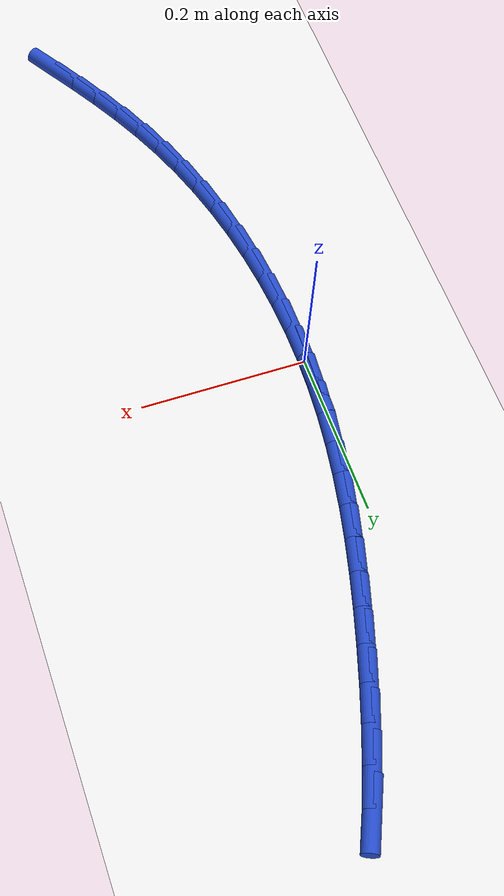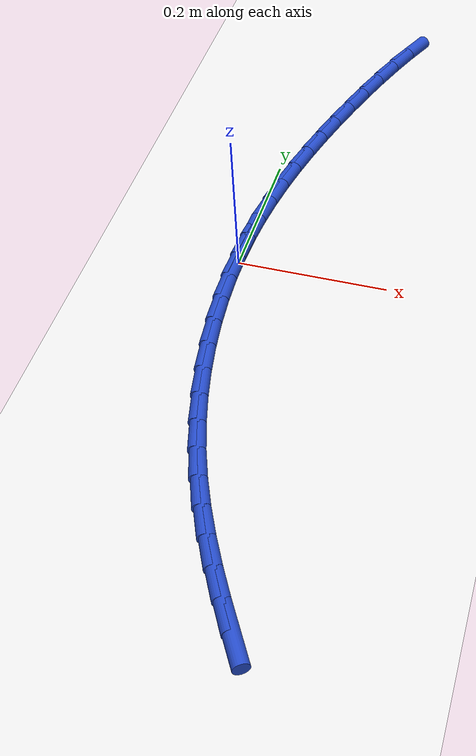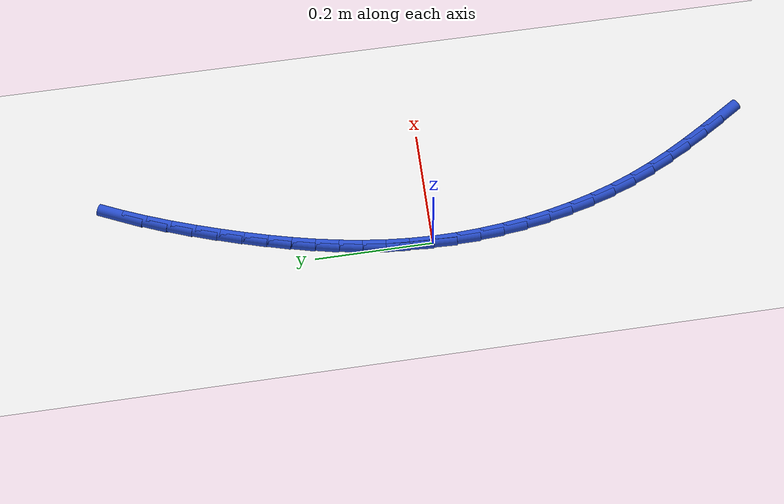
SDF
<sdf version="1.6">
 <world name="default">
  <model name="ground_plane">
   <static>1</static>
   <link name="link">
    <collision name="collision">
     <geometry><plane><normal>0 0 1</normal><size>100 100</size></plane></geometry>
     <surface><friction><ode><mu>100</mu><mu2>50</mu2></ode></friction></surface>
    </collision>
    <visual name="visual">
     <cast_shadows>0</cast_shadows>
     <geometry><plane><normal>0 0 1</normal><size>100 100</size></plane></geometry>
     <material>
      <script><uri>file://media/materials/scripts/gazebo.material</uri><name>Gazebo/WhiteGlow</name></script>
     </material>
    </visual>
   </link>
  </model>
  <model name="line">
   <link name="link_0">
    <pose>3.469446951953614e-18 -4.163336342344337e-17 0.01 0 1.57 1.5344979702878982</pose>
    <collision name="collision">
     <geometry><cylinder><radius>0.01</radius><length>0.08</length></cylinder></geometry>
    </collision>
    <visual name="visual">
     <material>
      <script><name>Gazebo/Blue</name><uri>file://media/materials/scripts/gazebo.material</uri></script>
     </material>
     <geometry><cylinder><radius>0.01</radius><length>0.08</length></cylinder></geometry>
    </visual>
   </link>
   <link name="link_1">
    <pose>0.001436487028958093 0.03955705493695735 0.01 0 1.57 1.4928967882833355</pose>
    <collision name="collision">
     <geometry><cylinder><radius>0.01</radius><length>0.08</length></cylinder></geometry>
    </collision>
    <visual name="visual">
     <material>
      <script><name>Gazebo/Blue</name><uri>file://media/materials/scripts/gazebo.material</uri></script>
     </material>
     <geometry><cylinder><radius>0.01</radius><length>0.08</length></cylinder></geometry>
    </visual>
   </link>
   <link name="link_2">
    <pose>0.004500429375133962 0.07880943327557499 0.01 0 1.57 1.4535230239657189</pose>
    <collision name="collision">
     <geometry><cylinder><radius>0.01</radius><length>0.08</length></cylinder></geometry>
    </collision>
    <visual name="visual">
     <material>
      <script><name>Gazebo/Blue</name><uri>file://media/materials/scripts/gazebo.material</uri></script>
     </material>
     <geometry><cylinder><radius>0.01</radius><length>0.08</length></cylinder></geometry>
    </visual>
   </link>
   <link name="link_3">
    <pose>0.00910140999084232 0.11786238624754719 0.01 0 1.57 1.4167946636751974</pose>
    <collision name="collision">
     <geometry><cylinder><radius>0.01</radius><length>0.08</length></cylinder></geometry>
    </collision>
    <visual name="visual">
     <material>
      <script><name>Gazebo/Blue</name><uri>file://media/materials/scripts/gazebo.material</uri></script>
     </material>
     <geometry><cylinder><radius>0.01</radius><length>0.08</length></cylinder></geometry>
    </visual>
   </link>
   <link name="link_4">
    <pose>0.015149011828397878 0.15682116508456825 0.01 0 1.57 1.3830459368744668</pose>
    <collision name="collision">
     <geometry><cylinder><radius>0.01</radius><length>0.08</length></cylinder></geometry>
    </collision>
    <visual name="visual">
     <material>
      <script><name>Gazebo/Blue</name><uri>file://media/materials/scripts/gazebo.material</uri></script>
     </material>
     <geometry><cylinder><radius>0.01</radius><length>0.08</length></cylinder></geometry>
    </visual>
   </link>
   <link name="link_5">
    <pose>0.02255281784011534 0.19579102101833246 0.01 0 1.57 1.352523003787821</pose>
    <collision name="collision">
     <geometry><cylinder><radius>0.01</radius><length>0.08</length></cylinder></geometry>
    </collision>
    <visual name="visual">
     <material>
      <script><name>Gazebo/Blue</name><uri>file://media/materials/scripts/gazebo.material</uri></script>
     </material>
     <geometry><cylinder><radius>0.01</radius><length>0.08</length></cylinder></geometry>
    </visual>
   </link>
   <link name="link_6">
    <pose>0.031222410978309398 0.23487720528053405 0.01 0 1.57 1.3253861891705012</pose>
    <collision name="collision">
     <geometry><cylinder><radius>0.01</radius><length>0.08</length></cylinder></geometry>
    </collision>
    <visual name="visual">
     <material>
      <script><name>Gazebo/Blue</name><uri>file://media/materials/scripts/gazebo.material</uri></script>
     </material>
     <geometry><cylinder><radius>0.01</radius><length>0.08</length></cylinder></geometry>
    </visual>
   </link>
   <link name="link_7">
    <pose>0.041067374195294784 0.27418496910286744 0.01 0 1.57 1.301717111790584</pose>
    <collision name="collision">
     <geometry><cylinder><radius>0.01</radius><length>0.08</length></cylinder></geometry>
    </collision>
    <visual name="visual">
     <material>
      <script><name>Gazebo/Blue</name><uri>file://media/materials/scripts/gazebo.material</uri></script>
     </material>
     <geometry><cylinder><radius>0.01</radius><length>0.08</length></cylinder></geometry>
    </visual>
   </link>
   <link name="link_8">
    <pose>0.0519972904433862 0.31381956371702685 0.01 0 1.57 1.2815008445824343</pose>
    <collision name="collision">
     <geometry><cylinder><radius>0.01</radius><length>0.08</length></cylinder></geometry>
    </collision>
    <visual name="visual">
     <material>
      <script><name>Gazebo/Blue</name><uri>file://media/materials/scripts/gazebo.material</uri></script>
     </material>
     <geometry><cylinder><radius>0.01</radius><length>0.08</length></cylinder></geometry>
    </visual>
   </link>
   <link name="link_9">
    <pose>0.06392246939135944 0.3538845780919829 0.01 0 1.57 1.2624254854172274</pose>
    <collision name="collision">
     <geometry><cylinder><radius>0.01</radius><length>0.08</length></cylinder></geometry>
    </collision>
    <visual name="visual">
     <material>
      <script><name>Gazebo/Blue</name><uri>file://media/materials/scripts/gazebo.material</uri></script>
     </material>
     <geometry><cylinder><radius>0.01</radius><length>0.08</length></cylinder></geometry>
    </visual>
   </link>
   <link name="link_10">
    <pose>0.07681184704010782 0.3943495016245623 0.01 0 1.57 1.2404559901151915</pose>
    <collision name="collision">
     <geometry><cylinder><radius>0.01</radius><length>0.08</length></cylinder></geometry>
    </collision>
    <visual name="visual">
     <material>
      <script><name>Gazebo/Blue</name><uri>file://media/materials/scripts/gazebo.material</uri></script>
     </material>
     <geometry><cylinder><radius>0.01</radius><length>0.08</length></cylinder></geometry>
    </visual>
   </link>
   <link name="link_11">
    <pose>0.09073511784532025 0.43495335277489927 0.01 0 1.57 1.2149619485585201</pose>
    <collision name="collision">
     <geometry><cylinder><radius>0.01</radius><length>0.08</length></cylinder></geometry>
    </collision>
    <visual name="visual">
     <material>
      <script><name>Gazebo/Blue</name><uri>file://media/materials/scripts/gazebo.material</uri></script>
     </material>
     <geometry><cylinder><radius>0.01</radius><length>0.08</length></cylinder></geometry>
    </visual>
   </link>
   <link name="link_12">
    <pose>0.10577191207135259 0.4754124232241697 0.01 0 1.57 1.185610204041894</pose>
    <collision name="collision">
     <geometry><cylinder><radius>0.01</radius><length>0.08</length></cylinder></geometry>
    </collision>
    <visual name="visual">
     <material>
      <script><name>Gazebo/Blue</name><uri>file://media/materials/scripts/gazebo.material</uri></script>
     </material>
     <geometry><cylinder><radius>0.01</radius><length>0.08</length></cylinder></geometry>
    </visual>
   </link>
   <link name="link_13">
    <pose>0.12200185998256091 0.5154430046535502 0.01 0 1.57 1.1519797246476149</pose>
    <collision name="collision">
     <geometry><cylinder><radius>0.01</radius><length>0.08</length></cylinder></geometry>
    </collision>
    <visual name="visual">
     <material>
      <script><name>Gazebo/Blue</name><uri>file://media/materials/scripts/gazebo.material</uri></script>
     </material>
     <geometry><cylinder><radius>0.01</radius><length>0.08</length></cylinder></geometry>
    </visual>
   </link>
   <link name="link_166">
    <pose>0.15732439275189344 -0.5255589765848403 0.01 0 1.57 -1.0168415057809936</pose>
    <collision name="collision">
     <geometry><cylinder><radius>0.01</radius><length>0.08</length></cylinder></geometry>
    </collision>
    <visual name="visual">
     <material>
      <script><name>Gazebo/Blue</name><uri>file://media/materials/scripts/gazebo.material</uri></script>
     </material>
     <geometry><cylinder><radius>0.01</radius><length>0.08</length></cylinder></geometry>
    </visual>
   </link>
   <link name="link_167">
    <pose>0.1364174357556375 -0.49175957080578053 0.01 0 1.57 -1.040831658568679</pose>
    <collision name="collision">
     <geometry><cylinder><radius>0.01</radius><length>0.08</length></cylinder></geometry>
    </collision>
    <visual name="visual">
     <material>
      <script><name>Gazebo/Blue</name><uri>file://media/materials/scripts/gazebo.material</uri></script>
     </material>
     <geometry><cylinder><radius>0.01</radius><length>0.08</length></cylinder></geometry>
    </visual>
   </link>
   <link name="link_168">
    <pose>0.11652682424384922 -0.45780899012021825 0.01 0 1.57 -1.0719374288152006</pose>
    <collision name="collision">
     <geometry><cylinder><radius>0.01</radius><length>0.08</length></cylinder></geometry>
    </collision>
    <visual name="visual">
     <material>
      <script><name>Gazebo/Blue</name><uri>file://media/materials/scripts/gazebo.material</uri></script>
     </material>
     <geometry><cylinder><radius>0.01</radius><length>0.08</length></cylinder></geometry>
    </visual>
   </link>
   <link name="link_169">
    <pose>0.09782284522874207 -0.42347853446025757 0.01 0 1.57 -1.1099565218265075</pose>
    <collision name="collision">
     <geometry><cylinder><radius>0.01</radius><length>0.08</length></cylinder></geometry>
    </collision>
    <visual name="visual">
     <material>
      <script><name>Gazebo/Blue</name><uri>file://media/materials/scripts/gazebo.material</uri></script>
     </material>
     <geometry><cylinder><radius>0.01</radius><length>0.08</length></cylinder></geometry>
    </visual>
   </link>
   <link name="link_170">
    <pose>0.08047578572252909 -0.38853950375800145 0.01 0 1.57 -1.1544578247031898</pose>
    <collision name="collision">
     <geometry><cylinder><radius>0.01</radius><length>0.08</length></cylinder></geometry>
    </collision>
    <visual name="visual">
     <material>
      <script><name>Gazebo/Blue</name><uri>file://media/materials/scripts/gazebo.material</uri></script>
     </material>
     <geometry><cylinder><radius>0.01</radius><length>0.08</length></cylinder></geometry>
    </visual>
   </link>
   <link name="link_171">
    <pose>0.06465593273742443 -0.3527631979455552 0.01 0 1.57 -1.2042963847049917</pose>
    <collision name="collision">
     <geometry><cylinder><radius>0.01</radius><length>0.08</length></cylinder></geometry>
    </collision>
    <visual name="visual">
     <material>
      <script><name>Gazebo/Blue</name><uri>file://media/materials/scripts/gazebo.material</uri></script>
     </material>
     <geometry><cylinder><radius>0.01</radius><length>0.08</length></cylinder></geometry>
    </visual>
   </link>
   <link name="link_172">
    <pose>0.05052342321026549 -0.31594463890425967 0.01 0 1.57 -1.254300189216201</pose>
    <collision name="collision">
     <geometry><cylinder><radius>0.01</radius><length>0.08</length></cylinder></geometry>
    </collision>
    <visual name="visual">
     <material>
      <script><name>Gazebo/Blue</name><uri>file://media/materials/scripts/gazebo.material</uri></script>
     </material>
     <geometry><cylinder><radius>0.01</radius><length>0.08</length></cylinder></geometry>
    </visual>
   </link>
   <link name="link_173">
    <pose>0.03813546275692901 -0.27811941141577295 0.01 0 1.57 -1.302054899703073</pose>
    <collision name="collision">
     <geometry><cylinder><radius>0.01</radius><length>0.08</length></cylinder></geometry>
    </collision>
    <visual name="visual">
     <material>
      <script><name>Gazebo/Blue</name><uri>file://media/materials/scripts/gazebo.material</uri></script>
     </material>
     <geometry><cylinder><radius>0.01</radius><length>0.08</length></cylinder></geometry>
    </visual>
   </link>
   <link name="link_174">
    <pose>0.027489366378452614 -0.23946307184545434 0.01 0 1.57 -1.3479600515284709</pose>
    <collision name="collision">
     <geometry><cylinder><radius>0.01</radius><length>0.08</length></cylinder></geometry>
    </collision>
    <visual name="visual">
     <material>
      <script><name>Gazebo/Blue</name><uri>file://media/materials/scripts/gazebo.material</uri></script>
     </material>
     <geometry><cylinder><radius>0.01</radius><length>0.08</length></cylinder></geometry>
    </visual>
   </link>
   <link name="link_175">
    <pose>0.01858170668769959 -0.20015291160928467 0.01 0 1.57 -1.392434477097985</pose>
    <collision name="collision">
     <geometry><cylinder><radius>0.01</radius><length>0.08</length></cylinder></geometry>
    </collision>
    <visual name="visual">
     <material>
      <script><name>Gazebo/Blue</name><uri>file://media/materials/scripts/gazebo.material</uri></script>
     </material>
     <geometry><cylinder><radius>0.01</radius><length>0.08</length></cylinder></geometry>
    </visual>
   </link>
   <link name="link_176">
    <pose>0.011409056297533107 -0.16036622212324403 0.01 0 1.57 -1.4358856992103142</pose>
    <collision name="collision">
     <geometry><cylinder><radius>0.01</radius><length>0.08</length></cylinder></geometry>
    </collision>
    <visual name="visual">
     <material>
      <script><name>Gazebo/Blue</name><uri>file://media/materials/scripts/gazebo.material</uri></script>
     </material>
     <geometry><cylinder><radius>0.01</radius><length>0.08</length></cylinder></geometry>
    </visual>
   </link>
   <link name="link_177">
    <pose>0.005967987820816718 -0.12028029480331492 0.01 0 1.57 -1.4787145114226121</pose>
    <collision name="collision">
     <geometry><cylinder><radius>0.01</radius><length>0.08</length></cylinder></geometry>
    </collision>
    <visual name="visual">
     <material>
      <script><name>Gazebo/Blue</name><uri>file://media/materials/scripts/gazebo.material</uri></script>
     </material>
     <geometry><cylinder><radius>0.01</radius><length>0.08</length></cylinder></geometry>
    </visual>
   </link>
   <link name="link_178">
    <pose>0.002255073870413549 -0.08007242106547727 0.01 0 1.57 -1.5213208798495181</pose>
    <collision name="collision">
     <geometry><cylinder><radius>0.01</radius><length>0.08</length></cylinder></geometry>
    </collision>
    <visual name="visual">
     <material>
      <script><name>Gazebo/Blue</name><uri>file://media/materials/scripts/gazebo.material</uri></script>
     </material>
     <geometry><cylinder><radius>0.01</radius><length>0.08</length></cylinder></geometry>
    </visual>
   </link>
   <link name="link_179">
    <pose>0.00026688705918687973 -0.039919892325711984 0.01 0 1.57 -1.564110860792519</pose>
    <collision name="collision">
     <geometry><cylinder><radius>0.01</radius><length>0.08</length></cylinder></geometry>
    </collision>
    <visual name="visual">
     <material>
      <script><name>Gazebo/Blue</name><uri>file://media/materials/scripts/gazebo.material</uri></script>
     </material>
     <geometry><cylinder><radius>0.01</radius><length>0.08</length></cylinder></geometry>
    </visual>
   </link>
   <link name="link_180">
    <pose>0.0 9.71445146547012e-17 0.01 0 1.57 1.5340882826123694</pose>
    <collision name="collision">
     <geometry><cylinder><radius>0.01</radius><length>0.08</length></cylinder></geometry>
    </collision>
    <visual name="visual">
     <material>
      <script><name>Gazebo/Blue</name><uri>file://media/materials/scripts/gazebo.material</uri></script>
     </material>
     <geometry><cylinder><radius>0.01</radius><length>0.08</length></cylinder></geometry>
    </visual>
   </link>
   <link name="link_181">
    <pose>0.00145098530571618 0.039509964495678125 0.01 0 1.57 1.5340882826123696</pose>
    <collision name="collision">
     <geometry><cylinder><radius>0.01</radius><length>0.08</length></cylinder></geometry>
    </collision>
    <visual name="visual">
     <material>
      <script><name>Gazebo/Blue</name><uri>file://media/materials/scripts/gazebo.material</uri></script>
     </material>
     <geometry><cylinder><radius>0.01</radius><length>0.08</length></cylinder></geometry>
    </visual>
   </link>
  </model>
 </world>
</sdf>
